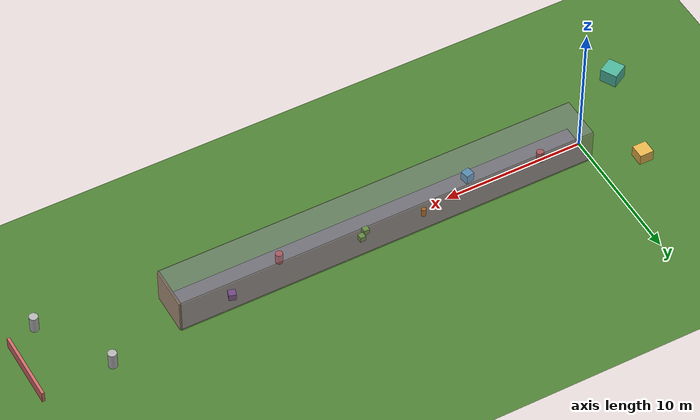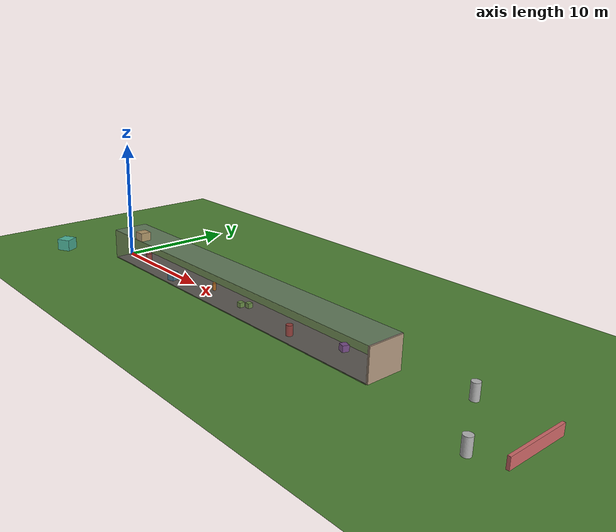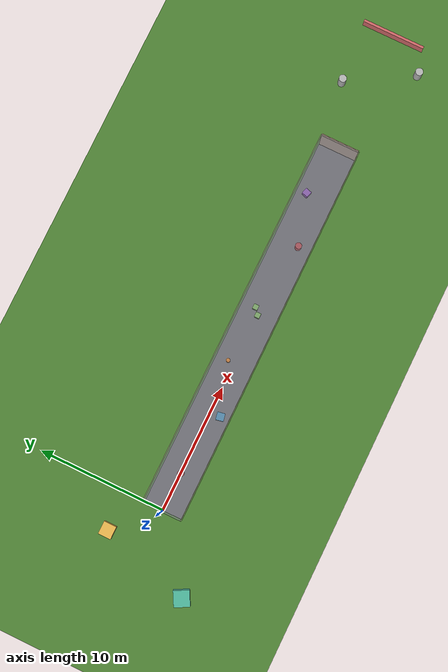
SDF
<?xml version="1.0"?>
<sdf version="1.6">
  <world name="corridor_tunnel_world">

    <!-- Physics -->
    <physics type="ode">
      <max_step_size>0.001</max_step_size>
      <real_time_factor>1.0</real_time_factor>
      <real_time_update_rate>1000</real_time_update_rate>
    </physics>

    <!-- Scene - darker inside tunnel -->
    <scene>
      <ambient>0.4 0.4 0.4 1</ambient>
      <shadows>true</shadows>
    </scene>

    <!-- Light - sun covers outdoor area -->
    <light type="sun" name="sun">
      <cast_shadows>true</cast_shadows>
      <pose>15 0 30 0 0 0</pose>
    </light>

    <!-- Ground - large outdoor area -->
    <model name="ground_plane">
      <static>true</static>
      <link name="link">
        <collision name="collision">
          <geometry>
            <plane>
              <normal>0 0 1</normal>
            </plane>
          </geometry>
        </collision>
        <visual name="visual">
          <geometry>
            <plane>
              <normal>0 0 1</normal>
              <size>100 100</size>
            </plane>
          </geometry>
          <material>
            <ambient>0.3 0.5 0.2 1</ambient>
          </material>
        </visual>
      </link>
    </model>

    <!-- ==================== LONG TUNNEL (30m long, 3m wide, 2.5m high) ==================== -->
    <!-- Tunnel floor -->
    <model name="tunnel_floor">
      <static>true</static>
      <pose>15 0 0.01 0 0 0</pose>
      <link name="link">
        <collision name="collision">
          <geometry>
            <box>
              <size>30 3 0.02</size>
            </box>
          </geometry>
        </collision>
        <visual name="visual">
          <geometry>
            <box>
              <size>30 3 0.02</size>
            </box>
          </geometry>
          <material>
            <ambient>0.4 0.4 0.4 1</ambient>
          </material>
        </visual>
      </link>
    </model>

    <!-- Tunnel Left Wall - semi-transparent -->
    <model name="tunnel_wall_left">
      <static>true</static>
      <pose>15 1.5 1.25 0 0 0</pose>
      <link name="link">
        <collision name="collision">
          <geometry>
            <box>
              <size>30 0.15 2.5</size>
            </box>
          </geometry>
        </collision>
        <visual name="visual">
          <geometry>
            <box>
              <size>30 0.15 2.5</size>
            </box>
          </geometry>
          <material>
            <ambient>0.6 0.55 0.5 1</ambient>
          </material>
          <transparency>0.5</transparency>
        </visual>
      </link>
    </model>

    <!-- Tunnel Right Wall - semi-transparent -->
    <model name="tunnel_wall_right">
      <static>true</static>
      <pose>15 -1.5 1.25 0 0 0</pose>
      <link name="link">
        <collision name="collision">
          <geometry>
            <box>
              <size>30 0.15 2.5</size>
            </box>
          </geometry>
        </collision>
        <visual name="visual">
          <geometry>
            <box>
              <size>30 0.15 2.5</size>
            </box>
          </geometry>
          <material>
            <ambient>0.6 0.55 0.5 1</ambient>
          </material>
          <transparency>0.5</transparency>
        </visual>
      </link>
    </model>

    <!-- Tunnel Roof (blocks GPS signal) - semi-transparent -->
    <model name="tunnel_roof">
      <static>true</static>
      <pose>15 0 2.5 0 0 0</pose>
      <link name="link">
        <collision name="collision">
          <geometry>
            <box>
              <size>30 3 0.1</size>
            </box>
          </geometry>
        </collision>
        <visual name="visual">
          <geometry>
            <box>
              <size>30 3 0.1</size>
            </box>
          </geometry>
          <material>
            <ambient>0.5 0.5 0.55 1</ambient>
          </material>
          <transparency>0.5</transparency>
        </visual>
      </link>
    </model>

    <!-- Tunnel Entrance Frame (Front) - REMOVED to allow robot entry -->

    <!-- Tunnel Entrance Frame (Back) - decorative only -->
    <model name="tunnel_entrance_back">
      <static>true</static>
      <pose>30 0 1.25 0 0 0</pose>
      <link name="link">
        <collision name="collision">
          <geometry>
            <box>
              <size>0.15 3 2.5</size>
            </box>
          </geometry>
        </collision>
        <visual name="visual">
          <geometry>
            <box>
              <size>0.15 3 2.5</size>
            </box>
          </geometry>
          <material>
            <ambient>0.7 0.6 0.5 1</ambient>
          </material>
        </visual>
      </link>
    </model>

    <!-- ==================== TUNNEL OBSTACLES ==================== -->
    <!-- Obstacle 1: Barrel near entrance -->
    <model name="tunnel_barrel_1">
      <static>true</static>
      <pose>3 0 0.4 0 0 0</pose>
      <link name="link">
        <collision name="collision">
          <geometry>
            <cylinder>
              <radius>0.25</radius>
              <length>0.8</length>
            </cylinder>
          </geometry>
        </collision>
        <visual name="visual">
          <geometry>
            <cylinder>
              <radius>0.25</radius>
              <length>0.8</length>
            </cylinder>
          </geometry>
          <material>
            <ambient>0.8 0.2 0.2 1</ambient>
          </material>
        </visual>
      </link>
    </model>

    <!-- Obstacle 2: Box in middle-left -->
    <model name="tunnel_box_1">
      <static>true</static>
      <pose>8 -0.8 0.35 0 0 0.2</pose>
      <link name="link">
        <collision name="collision">
          <geometry>
            <box>
              <size>0.6 0.6 0.7</size>
            </box>
          </geometry>
        </collision>
        <visual name="visual">
          <geometry>
            <box>
              <size>0.6 0.6 0.7</size>
            </box>
          </geometry>
          <material>
            <ambient>0.2 0.6 0.8 1</ambient>
          </material>
        </visual>
      </link>
    </model>

    <!-- Obstacle 3: Cone-like cylinder near middle -->
    <model name="tunnel_cone_1">
      <static>true</static>
      <pose>12 0.5 0.3 0 0 0</pose>
      <link name="link">
        <collision name="collision">
          <geometry>
            <cylinder>
              <radius>0.15</radius>
              <length>0.6</length>
            </cylinder>
          </geometry>
        </collision>
        <visual name="visual">
          <geometry>
            <cylinder>
              <radius>0.15</radius>
              <length>0.6</length>
            </cylinder>
          </geometry>
          <material>
            <ambient>1 0.5 0 1</ambient>
          </material>
        </visual>
      </link>
    </model>

    <!-- Obstacle 4: Small boxes cluster -->
    <model name="tunnel_box_2">
      <static>true</static>
      <pose>16 0 0.2 0 0 0</pose>
      <link name="link">
        <collision name="collision">
          <geometry>
            <box>
              <size>0.4 0.4 0.4</size>
            </box>
          </geometry>
        </collision>
        <visual name="visual">
          <geometry>
            <box>
              <size>0.4 0.4 0.4</size>
            </box>
          </geometry>
          <material>
            <ambient>0.5 0.8 0.3 1</ambient>
          </material>
        </visual>
      </link>
    </model>

    <model name="tunnel_box_3">
      <static>true</static>
      <pose>16.5 0.4 0.2 0 0 0</pose>
      <link name="link">
        <collision name="collision">
          <geometry>
            <box>
              <size>0.4 0.4 0.4</size>
            </box>
          </geometry>
        </collision>
        <visual name="visual">
          <geometry>
            <box>
              <size>0.4 0.4 0.4</size>
            </box>
          </geometry>
          <material>
            <ambient>0.5 0.8 0.3 1</ambient>
          </material>
        </visual>
      </link>
    </model>

    <!-- Obstacle 5: Barrel near exit -->
    <model name="tunnel_barrel_2">
      <static>true</static>
      <pose>22 -0.5 0.4 0 0 0</pose>
      <link name="link">
        <collision name="collision">
          <geometry>
            <cylinder>
              <radius>0.25</radius>
              <length>0.8</length>
            </cylinder>
          </geometry>
        </collision>
        <visual name="visual">
          <geometry>
            <cylinder>
              <radius>0.25</radius>
              <length>0.8</length>
            </cylinder>
          </geometry>
          <material>
            <ambient>0.8 0.2 0.2 1</ambient>
          </material>
        </visual>
      </link>
    </model>

    <!-- Obstacle 6: Box near exit -->
    <model name="tunnel_box_4">
      <static>true</static>
      <pose>26 0.7 0.25 0 0 -0.3</pose>
      <link name="link">
        <collision name="collision">
          <geometry>
            <box>
              <size>0.5 0.5 0.5</size>
            </box>
          </geometry>
        </collision>
        <visual name="visual">
          <geometry>
            <box>
              <size>0.5 0.5 0.5</size>
            </box>
          </geometry>
          <material>
            <ambient>0.6 0.3 0.8 1</ambient>
          </material>
        </visual>
      </link>
    </model>

    <!-- ==================== OUTDOOR OBSTACLES ==================== -->
    <!-- Outdoor box 1 -->
    <model name="outdoor_box_1">
      <static>true</static>
      <pose>-3 3 0.4 0 0 0</pose>
      <link name="link">
        <collision name="collision">
          <geometry>
            <box>
              <size>1 1 0.8</size>
            </box>
          </geometry>
        </collision>
        <visual name="visual">
          <geometry>
            <box>
              <size>1 1 0.8</size>
            </box>
          </geometry>
          <material>
            <ambient>0.9 0.7 0.3 1</ambient>
          </material>
        </visual>
      </link>
    </model>

    <!-- Outdoor box 2 -->
    <model name="outdoor_box_2">
      <static>true</static>
      <pose>-5 -4 0.5 0 0 0.5</pose>
      <link name="link">
        <collision name="collision">
          <geometry>
            <box>
              <size>1.2 1.2 1</size>
            </box>
          </geometry>
        </collision>
        <visual name="visual">
          <geometry>
            <box>
              <size>1.2 1.2 1</size>
            </box>
          </geometry>
          <material>
            <ambient>0.3 0.7 0.6 1</ambient>
          </material>
        </visual>
      </link>
    </model>

    <!-- Outdoor pillar -->
    <model name="outdoor_pillar_1">
      <static>true</static>
      <pose>35 2 0.6 0 0 0</pose>
      <link name="link">
        <collision name="collision">
          <geometry>
            <cylinder>
              <radius>0.3</radius>
              <length>1.2</length>
            </cylinder>
          </geometry>
        </collision>
        <visual name="visual">
          <geometry>
            <cylinder>
              <radius>0.3</radius>
              <length>1.2</length>
            </cylinder>
          </geometry>
          <material>
            <ambient>0.7 0.7 0.7 1</ambient>
          </material>
        </visual>
      </link>
    </model>

    <!-- Outdoor pillar 2 -->
    <model name="outdoor_pillar_2">
      <static>true</static>
      <pose>38 -3 0.6 0 0 0</pose>
      <link name="link">
        <collision name="collision">
          <geometry>
            <cylinder>
              <radius>0.3</radius>
              <length>1.2</length>
            </cylinder>
          </geometry>
        </collision>
        <visual name="visual">
          <geometry>
            <cylinder>
              <radius>0.3</radius>
              <length>1.2</length>
            </cylinder>
          </geometry>
          <material>
            <ambient>0.7 0.7 0.7 1</ambient>
          </material>
        </visual>
      </link>
    </model>

    <!-- Outdoor long barrier -->
    <model name="outdoor_barrier">
      <static>true</static>
      <pose>40 0 0.4 0 0 1.57</pose>
      <link name="link">
        <collision name="collision">
          <geometry>
            <box>
              <size>5 0.2 0.8</size>
            </box>
          </geometry>
        </collision>
        <visual name="visual">
          <geometry>
            <box>
              <size>5 0.2 0.8</size>
            </box>
          </geometry>
          <material>
            <ambient>0.8 0.4 0.4 1</ambient>
          </material>
        </visual>
      </link>
    </model>

  </world>
</sdf>
